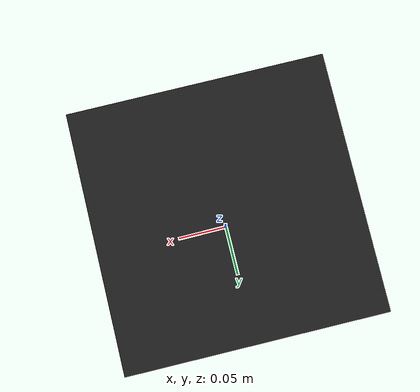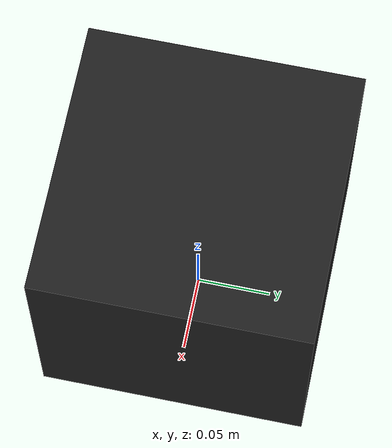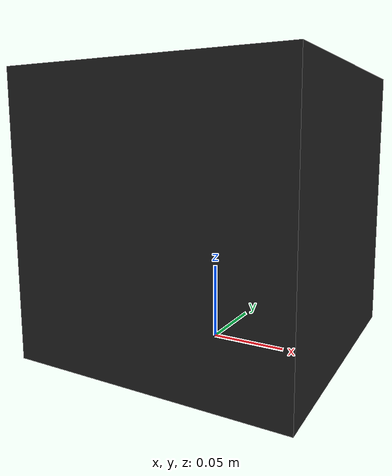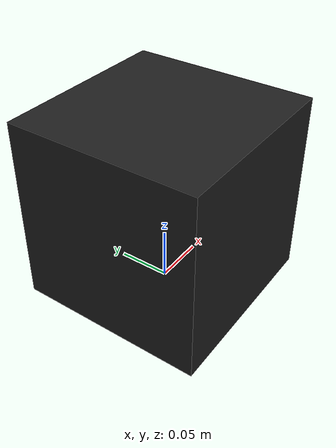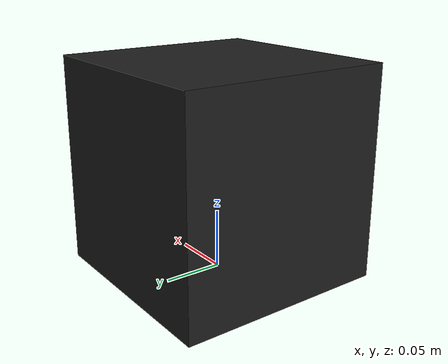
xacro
<?xml version="1.0" ?>
<robot name="box" xmlns:xacro="http://www.ros.org/wiki/xacro">
	<xacro:property name="grid_size" value="0.179"/>
	<xacro:property name="mass" value="1"/>

	<link name="base_link">
		<visual>
			<origin xyz="0 0 ${grid_size/2}" rpy="0 0 0"/>
			<geometry>
				<box size="${grid_size} ${grid_size} ${grid_size}"/>
			</geometry>
		</visual>

		<collision>
			<origin xyz="0 0 ${grid_size/2}" rpy="0 0 0"/>
			<geometry>
				<box size="${grid_size} ${grid_size} ${grid_size}"/>
			</geometry>
		</collision>

		<inertial>
			<origin xyz="0 0 ${grid_size/2}" rpy="0 0 0"/>
			<mass value="${mass}"/>
			<inertia
        		ixx="${1/6*mass*grid_size*grid_size}" ixy="0.0" ixz="0.0"
        		iyy="${1/6*mass*grid_size*grid_size}" iyz="0.0"
        		izz="${1/6*mass*grid_size*grid_size}"/>
		</inertial>
	</link>

	<gazebo reference="base_link">
		<mu1>1000000.0</mu1>
		<mu2>1000000.0</mu2>
		<material>Gazebo/Black</material>
	</gazebo>
</robot>
